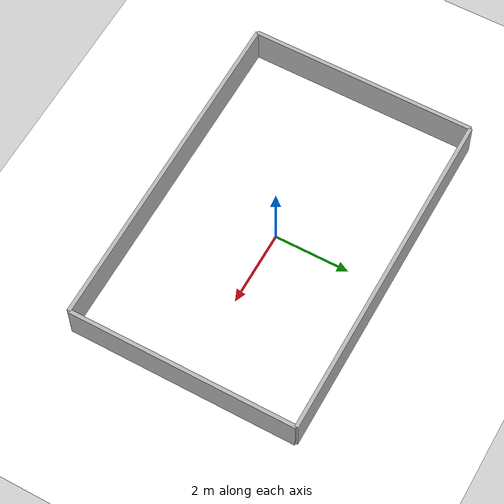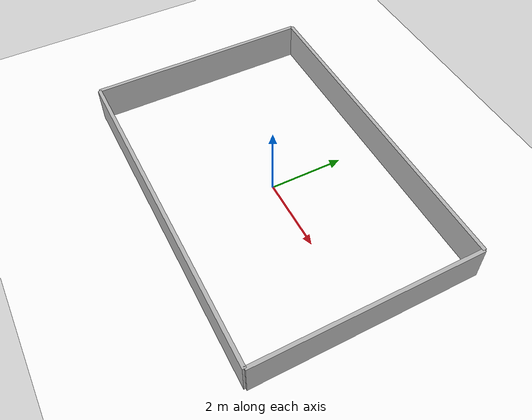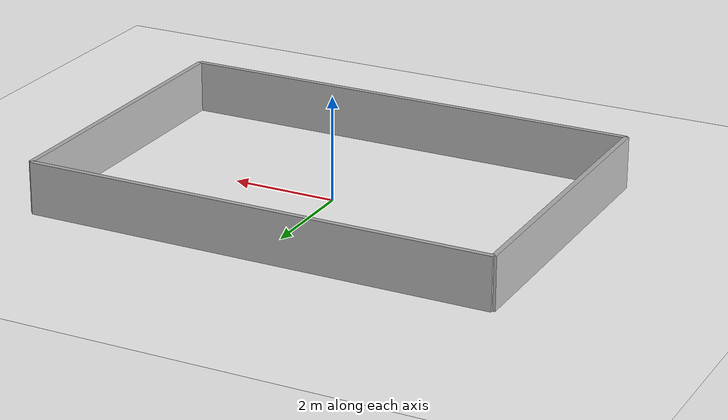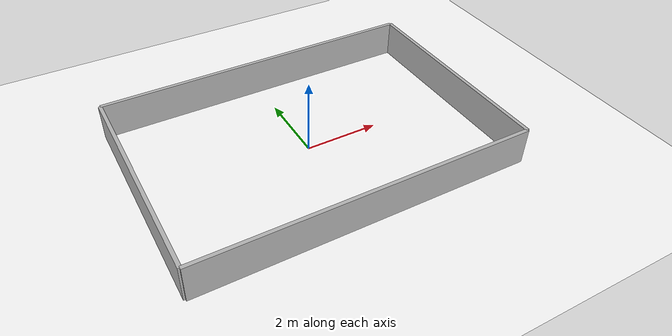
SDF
<?xml version="1.0" ?>
<sdf version="1.7">
  <world name="warehouse_world">

    <physics name="250hz" type="ignored">
      <max_step_size>0.004</max_step_size>
      <real_time_factor>1.0</real_time_factor>
    </physics>

    <plugin filename="gz-sim-physics-system" name="gz::sim::systems::Physics"/>
    <plugin filename="gz-sim-user-commands-system" name="gz::sim::systems::UserCommands"/>
    <plugin filename="gz-sim-scene-broadcaster-system" name="gz::sim::systems::SceneBroadcaster"/>
    <plugin filename="gz-sim-sensors-system" name="gz::sim::systems::Sensors">
      <render_engine>ogre</render_engine>
    </plugin>

    <include>
      <uri>https://fuel.gazebosim.org/1.0/OpenRobotics/models/Sun</uri>
    </include>

    <model name="white_floor">
      <static>true</static>
      <pose>0 0 0 0 0 0</pose>
      <link name="floor_link">
        <collision name="collision">
          <geometry>
            <plane>
              <normal>0 0 1</normal>
              <size>20 20</size>
            </plane>
          </geometry>
        </collision>
        <visual name="visual">
          <geometry>
            <plane>
              <normal>0 0 1</normal>
              <size>20 20</size>
            </plane>
          </geometry>
          <material>
            <ambient>1 1 1 1</ambient>
            <diffuse>1 1 1 1</diffuse>
            <specular>0.1 0.1 0.1 1</specular>
          </material>
        </visual>
      </link>
    </model>

    <model name="wall_north">
      <static>true</static>
      <pose>0 3 0.5 0 0 0</pose>
      <link name="link">
        <collision name="collision"><geometry><box><size>9 0.1 1</size></box></geometry></collision>
        <visual name="visual"><geometry><box><size>9 0.1 1</size></box></geometry></visual>
      </link>
    </model>

    <model name="wall_south">
      <static>true</static>
      <pose>0 -3 0.5 0 0 0</pose>
      <link name="link">
        <collision name="collision"><geometry><box><size>9 0.1 1</size></box></geometry></collision>
        <visual name="visual"><geometry><box><size>9 0.1 1</size></box></geometry></visual>
      </link>
    </model>

    <model name="wall_east">
      <static>true</static>
      <pose>4.5 0 0.5 0 0 0</pose>
      <link name="link">
        <collision name="collision"><geometry><box><size>0.1 6 1</size></box></geometry></collision>
        <visual name="visual"><geometry><box><size>0.1 6 1</size></box></geometry></visual>
      </link>
    </model>

    <model name="wall_west">
      <static>true</static>
      <pose>-4.5 0 0.5 0 0 0</pose>
      <link name="link">
        <collision name="collision"><geometry><box><size>0.1 6 1</size></box></geometry></collision>
        <visual name="visual"><geometry><box><size>0.1 6 1</size></box></geometry></visual>
      </link>
    </model>

  </world>
</sdf>
